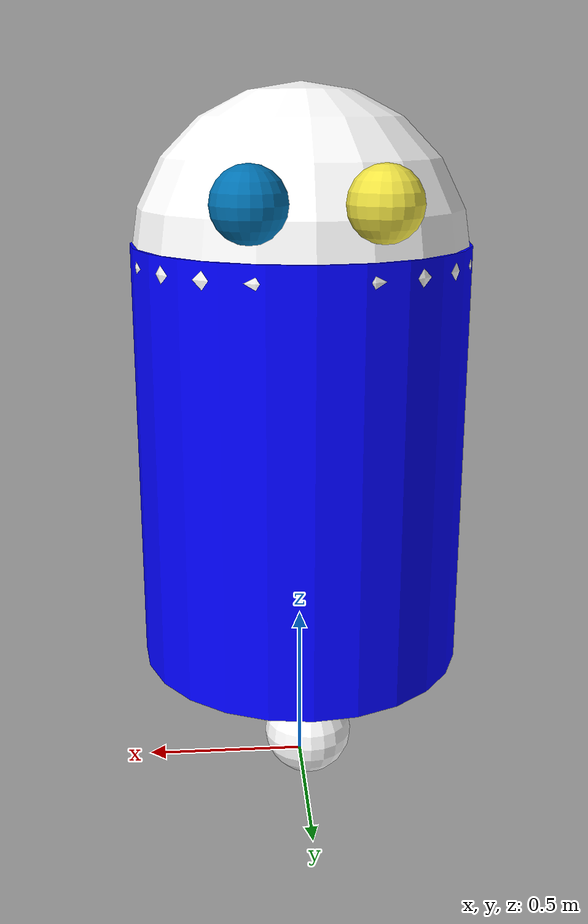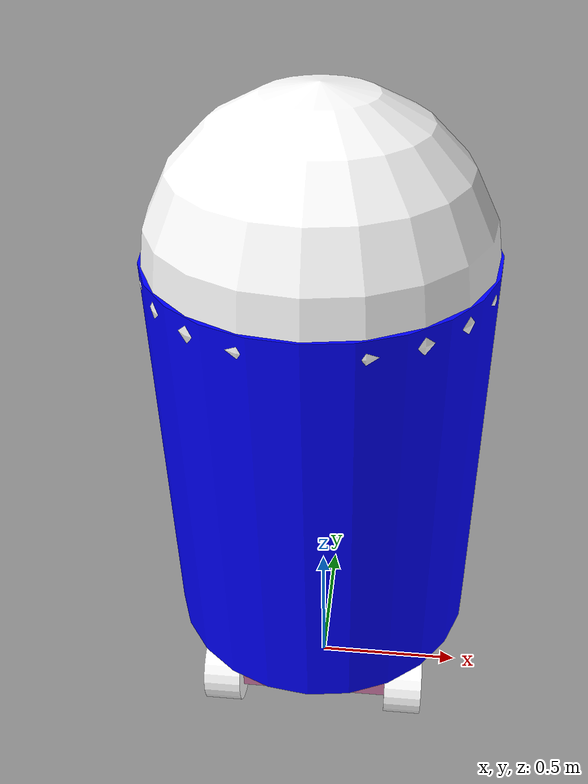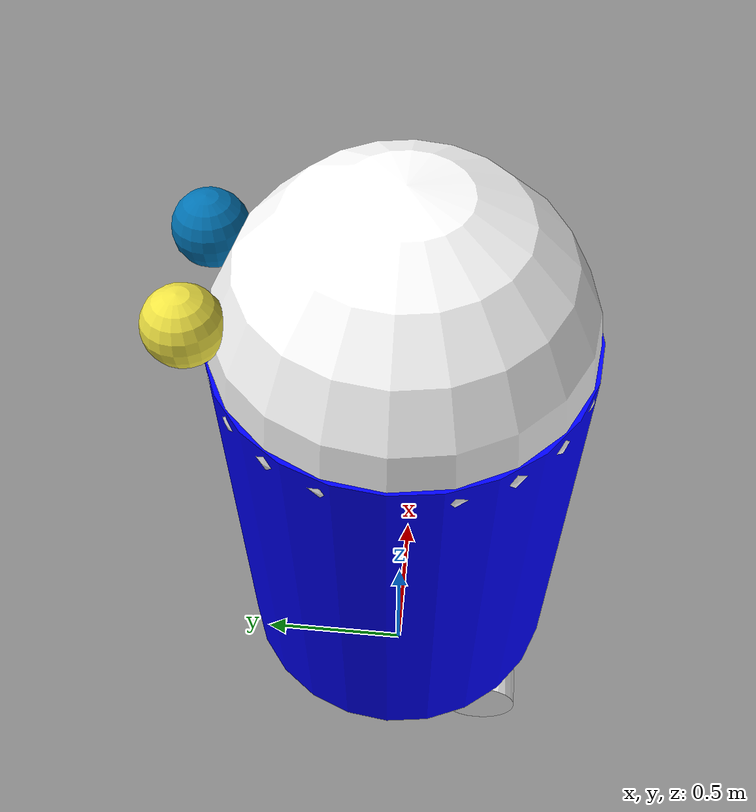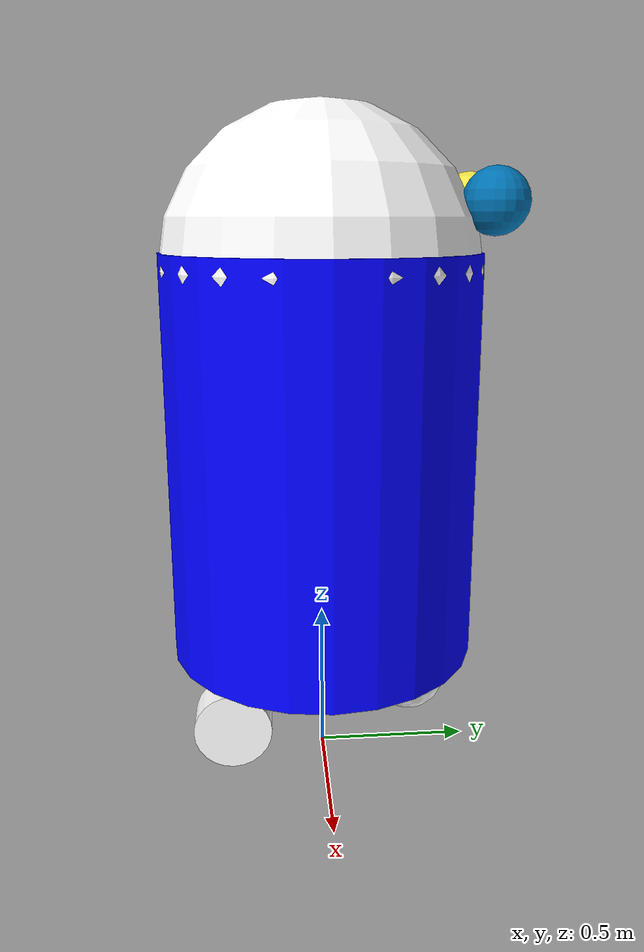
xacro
<?xml version="1.0" encoding="UTF-8"?>

<robot xmlns:xacro="http://www.ros.org/wiki/xacro" name="myRobot">

    <material name="blue">
        <color rgba="0 0 1 1" />
    </material>

    <material name="white">
        <color rgba="1 1 1 1" />
    </material>

    <material name="black">
        <color rgba="0 0 0 0" />
    </material>

    <link name="base_footprint"></link>

    <joint name="base_to_footprint_joint" type="fixed">
        <origin xyz="0.0 0.0 0.15" rpy="0.0 0.0 0.0" />
        <parent link="base_footprint" />
        <child link="base_link" />
    </joint>

    <!-- BASE LINK -->
    <link name="base_link">
        <visual>
            <geometry>
                <cylinder radius="0.5" length="1.3" />
            </geometry>
            <origin rpy="0.0 0.0 0.0" xyz="0.0 0.0 0.9" />
            <material name="blue">
            </material>
        </visual>
        <collision>
            <geometry>
                <cylinder radius="0.5" length="1.3" />
            </geometry>
            <origin rpy="0.0 0.0 0.0" xyz="0.0 0.0 0.9" />
        </collision>
        <inertial>
            <mass value="10.0" />
            <inertia ixx="1.0" ixy="0.0" ixz="0.0" iyy="1.0" iyz="0.0" izz="1.0" />
        </inertial>
    </link>

    <!-- HEAD LİNK -->
    <link name="head_link">
        <visual>
            <geometry>
                <sphere radius="0.5" />
            </geometry>
            <material name="white">
            </material>
        </visual>
        <collision>
            <geometry>
                <sphere radius="0.5" />
            </geometry>
        </collision>
        <inertial>
            <mass value="2.0" />
            <inertia ixx="1.0" ixy="0.0" ixz="0.0" iyy="1.0" iyz="0.0" izz="1.0" />
        </inertial>
    </link>

    <joint name="base_to_head_joint" type="fixed">
        <origin xyz="0.0 0.0 1.5" rpy="0.0 0.0 0.0" />
        <parent link="base_link" />
        <child link="head_link" />
    </joint>

    <!-- HEAD EYES -->
    <link name="head_left_link">
        <visual>
            <geometry>
                <sphere radius="0.1" />
            </geometry>
        </visual>
        <collision>
            <geometry>
                <sphere radius="0.1" />
            </geometry>
        </collision>
        <inertial>
            <mass value="0.5" />
            <inertia ixx="1.0" ixy="0.0" ixz="0.0" iyy="1.0" iyz="0.0" izz="1.0" />
        </inertial>
    </link>

    <joint name="base_to_head_left_joint" type="fixed">
        <origin xyz="-0.17 0.5 1.7" rpy="0.0 0.0 0.0" />
        <parent link="base_link" />
        <child link="head_left_link" />
    </joint>

    <link name="head_right_link">
        <visual>
            <geometry>
                <sphere radius="0.1" />
            </geometry>
        </visual>
        <collision>
            <geometry>
                <sphere radius="0.1" />
            </geometry>
        </collision>
        <inertial>
            <mass value="0.5" />
            <inertia ixx="1.0" ixy="0.0" ixz="0.0" iyy="1.0" iyz="0.0" izz="1.0" />
        </inertial>

    </link>

    <joint name="base_to_head_right_joint" type="fixed">
        <origin xyz="0.17 0.5 1.7" rpy="0.0 0.0 0.0" />
        <parent link="base_link" />
        <child link="head_right_link" />
    </joint>

    <!-- BACK LEG LINK -->
    <link name="back_leg_link">
        <visual>
            <geometry>
                <box size="0.1 0.1 0.2" />
            </geometry>
        </visual>
        <collision>
            <geometry>
                <box size="0.1 0.1 0.2" />
            </geometry>
        </collision>
        <inertial>
            <mass value="2.0" />
            <inertia ixx="1.0" ixy="0.0" ixz="0.0" iyy="1.0" iyz="0.0" izz="1.0" />
        </inertial>
    </link>

    <joint name="base_to_back_leg_joint" type="fixed">
        <origin xyz="0.0 -0.3 0.2" rpy="0.0 0.0 0.0" />
        <parent link="base_link" />
        <child link="back_leg_link" />
    </joint>

    <!-- BACK LEG BASE LINK -->
    <link name="back_leg_base_link">
        <visual>
            <geometry>
                <box size="0.5 0.1 0.1" />
            </geometry>
        </visual>
        <collision>
            <geometry>
                <box size="0.5 0.1 0.1" />
            </geometry>
        </collision>
        <inertial>
            <mass value="2.0" />
            <inertia ixx="1.0" ixy="0.0" ixz="0.0" iyy="1.0" iyz="0.0" izz="1.0" />
        </inertial>

    </link>

    <joint name="back_leg_to_leg_base_joint" type="fixed">
        <origin xyz="0.0 0.0 -0.08" rpy="0.0 0.0 0.0" />
        <parent link="back_leg_link" />
        <child link="back_leg_base_link" />
    </joint>

    <!-- RIGHT WHEEL LINK -->
    <link name="right_wheel_link">
        <visual>

            <pose relative_to='__model__'>0.0 0 0.0 0 0 0</pose>

            <geometry>
                <cylinder radius="0.12" length="0.12" />
            </geometry>
            <material name="white"></material>
        </visual>
        <collision>
            <geometry>
                <cylinder radius="0.12" length="0.12" />
            </geometry>
        </collision>
        <inertial>
            <mass value="1.0" />
            <inertia ixx="1.0" ixy="0.0" ixz="0.0" iyy="1.0" iyz="0.0" izz="1.0" />
        </inertial>
    </link>

    <joint name="leg_base_to_right_wheel_joint" type="continuous">
        <parent link="back_leg_base_link" />
        <child link="right_wheel_link" />
        <origin xyz="0.3 0.0 0.0" rpy="0.0 1.57075 0.0" />
        <axis xyz="0.0 0.0 1.0" />

    </joint>

    <!-- LEFT WHEEL LINK -->
    <link name="left_wheel_link">
        <visual>
            <geometry>
                <cylinder radius="0.12" length="0.12" />
            </geometry>
            <material name="white"></material>
        </visual>
        <collision>
            <geometry>
                <cylinder radius="0.12" length="0.12" />
            </geometry>
        </collision>
        <inertial>
            <mass value="1.0" />
            <inertia ixx="1.0" ixy="0.0" ixz="0.0" iyy="1.0" iyz="0.0" izz="1.0" />
        </inertial>
    </link>

    <joint name="leg_base_to_left_wheel_joint" type="continuous">
        <parent link="back_leg_base_link" />
        <child link="left_wheel_link" />
        <origin xyz="-0.3 0.0 0.0" rpy="0.0 1.57075 0.0" />
        <axis xyz="0.0 0.0 1.0" />

    </joint>

    <!-- FRONT LEG LINK -->
    <link name="front_leg_link">
        <visual>
            <geometry>
                <box size="0.1 0.1 0.2" />
            </geometry>
        </visual>
        <collision>
            <geometry>
                <box size="0.1 0.1 0.2" />
            </geometry>
        </collision>
        <inertial>
            <mass value="2.0" />
            <inertia ixx="1.0" ixy="0.0" ixz="0.0" iyy="1.0" iyz="0.0" izz="1.0" />
        </inertial>
    </link>

    <joint name="base_to_front_leg_joint" type="fixed">
        <origin xyz="0.0 0.3 0.2" rpy="0.0 0.0 0.0" />
        <parent link="base_link" />
        <child link="front_leg_link" />
    </joint>

    <!-- CASTER WHEEL LINK -->
    <link name="caster_wheel_link">
        <inertial>
            <mass value="2.0"/>
            <inertia ixx="1.0" ixy="0.0" ixz="0.0" iyy="1.0" iyz="0.0" izz="1.0"/>
        </inertial>
        <visual name="">
            <geometry>
                <sphere radius="0.13"/>
            </geometry>
            <material name="white"></material>
        </visual>
        <collision>
            <surface>
                <friction>
                    <ode>
                        <mu>0.0</mu>
                    </ode>
                </friction>
            </surface>
            <geometry>
                <sphere radius="0.13"/>
            </geometry>
        </collision>
    </link>

    <joint name="front_leg_to_caster_joint" type="fixed">
        <origin xyz="0.0 0.0 -0.09" rpy="0.0 0.0 0.0"/>
        <parent link="front_leg_link"/>
        <child link="caster_wheel_link"/>
        <dynamics damping="0.0" friction="0.0"/>

    </joint>

</robot>
